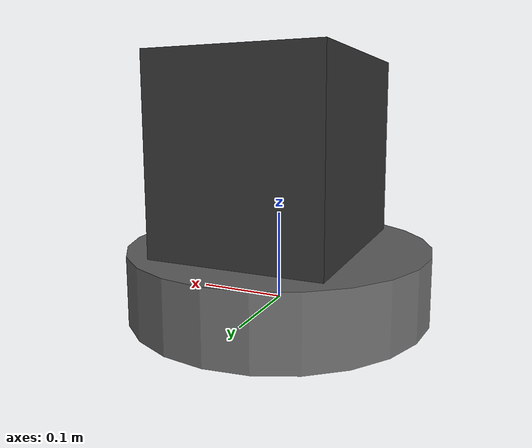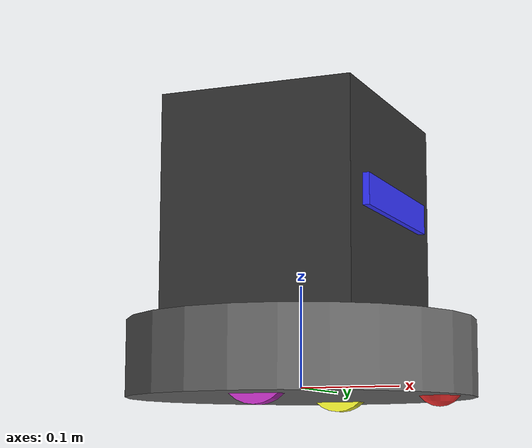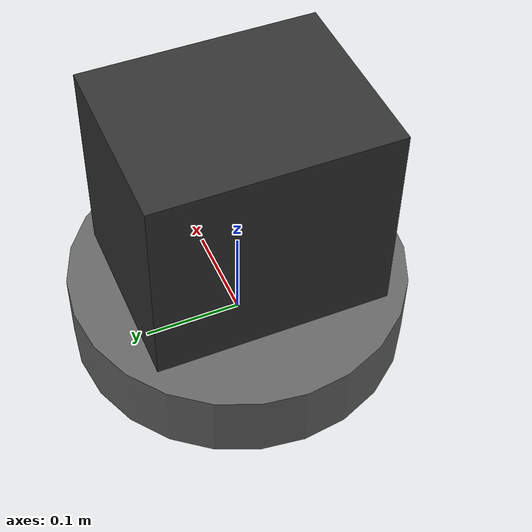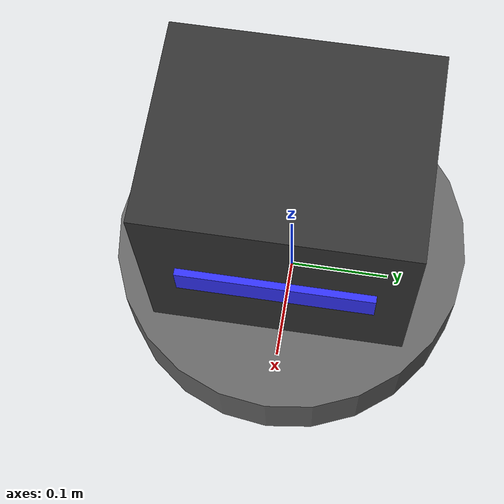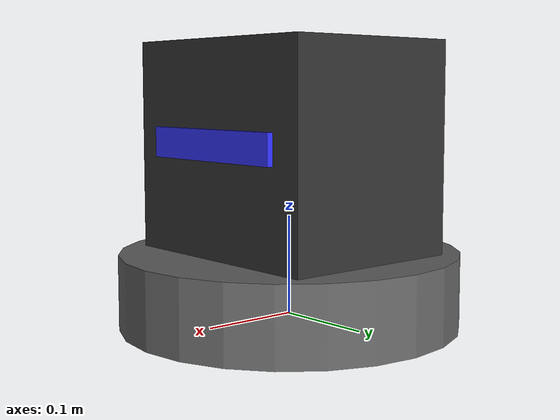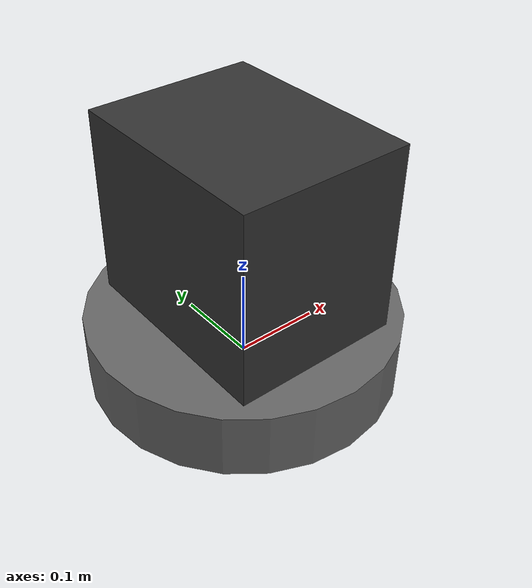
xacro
<?xml version="1.0"?>
<robot xmlns:xacro="http://www.ros.org/wiki/xacro"  name="robot">

    <xacro:arg name="use_ros2_control" default="true"/>
    <xacro:arg name="sim_mode" default="false"/>

    <xacro:include filename="robot_core.xacro" />

    <xacro:if value="$(arg use_ros2_control)">
        <xacro:include filename="ros2_control.xacro" />
    </xacro:if>
    <xacro:unless value="$(arg use_ros2_control)">
        <xacro:include filename="gazebo_control.xacro" />
    </xacro:unless>
    <xacro:include filename="lidar.xacro" />
    <xacro:include filename="depth_camera.xacro" />

</robot>

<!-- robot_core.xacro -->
<robot xmlns:xacro="http://www.ros.org/wiki/xacro">

<!-- Made by Ranil Ganlath: ranil.ganlath@gmail.com -->
<!-- This is the main urdf script for the Dark Passenger Payload mounted on a roomba chassis -->

  <!-- This makes inertia estimates easier -->
    <xacro:include filename="inertial_macros.xacro"/>

  <!-- Material Colors -->
    <material name="orange">
        <color rgba="${255/255} ${108/255} ${10/255} 1.0"/>
    </material>

    <material name="brown">
        <color rgba="${222/255} ${207/255} ${195/255} 1.0"/>
    </material>

    <material name="yellow">
        <color rgba="1 1 0.2 1" />
    </material>

    <material name="black">
        <color rgba="0.2 0.2 0.2 1" />
    </material>

    <material name="gray">
        <color rgba="0.4 0.4 0.4 1" />
    </material>

    <material name="white">
        <color rgba="0.7 0.7 0.7 1" />
    </material>

    <material name="blue">
        <color rgba="0.2 0.2 1 1" />
    </material>

    <material name="red">
        <color rgba="1 0.2 0.2 1" />
    </material>

    <material name="green">
        <color rgba="0.2 1 0.2 1" />
    </material>

    <material name="teal">
        <color rgba="0.2 0.8 1 1" />
    </material>

    <material name="magenta">
        <color rgba="0.8 0.2 0.8 1" />
    </material>

  <!-- XACRO Constants -->
    <xacro:property name="roomba_wheel_radius" value="0.035" />
    <xacro:property name="roomba_wheel_separation" value="0.218" />
    <xacro:property name="roomba_wheel_height_offset" value="0.01" />
    <xacro:property name="roomba_wheel_thickness" value="0.015" />
    <xacro:property name="roomba_wheel_weight" value="0.1" />
    <xacro:property name="caster_wheel_radius" value="0.024" />
    <xacro:property name="caster_wheel_weight" value="0.026" />
    <xacro:property name="caster_wheel_center_offset" value="0.14" />
    <xacro:property name="roomba_chassis_radius" value="0.17145" />
    <xacro:property name="roomba_chassis_height" value="0.075" />
    <xacro:property name="roomba_chassis_weight" value="1.81437" />

    <xacro:property name="payload_chassis_length" value="0.19" />
    <xacro:property name="payload_chassis_width" value="0.24" />
    <xacro:property name="payload_chassis_height" value="0.21" />
    <xacro:property name="payload_chassis_weight" value="3.4473" />

  <!-- Base Link (WORLD)-->
  <link name="base_link"></link>

 <!-- Roomba Chassis Link -->
    <joint name="roomba_chassis_joint" type="fixed">
        <parent link="base_link"/>
        <child link="roomba_chassis"/>
        <origin xyz="0 0 -${roomba_wheel_height_offset}" rpy="0 0 0"/>
    </joint>
    <link name="roomba_chassis">
        <visual>
            <origin xyz ="0 0 ${roomba_chassis_height/2}"/>
            <geometry>
                <cylinder radius="${roomba_chassis_radius}" length="${roomba_chassis_height}"/>
            </geometry>
            <material name="gray"/>
        </visual>
        <collision>
            <origin xyz ="0 0 ${roomba_chassis_height/2}"/>
            <geometry>
                <cylinder radius="${roomba_chassis_radius}" length="${roomba_chassis_height}"/>
            </geometry>
        </collision>
        <xacro:inertial_cylinder mass="${roomba_chassis_weight}" radius="${roomba_chassis_radius}" length="${roomba_chassis_height}">
            <origin xyz="0 0 ${roomba_chassis_height/2}" rpy= "0 0 0"/>
        </xacro:inertial_cylinder>
    </link>

    <gazebo reference="roomba_chassis">
        <material>Gazebo/White</material>
    </gazebo>

<!-- LEFT WHEEL Link -->
    <joint name="left_wheel_joint" type="continuous">
        <parent link="roomba_chassis"/>
        <child link="left_wheel"/>
        <origin xyz="0 ${roomba_wheel_separation/2} ${roomba_wheel_radius - roomba_wheel_height_offset}" rpy="-${pi/2} 0 0"/>
        <axis xyz="0 0 1"/>
    </joint>
    <link name="left_wheel">
        <visual>
            <geometry>
                <cylinder radius="${roomba_wheel_radius}" length="${roomba_wheel_thickness}"/>
            </geometry>
            <material name="yellow"/>
        </visual>
        <collision>
            <geometry>
                <sphere radius="${roomba_wheel_radius}"/>
            </geometry>
        </collision>
        <xacro:inertial_cylinder mass="${roomba_wheel_weight}" radius="${roomba_wheel_radius}" length="${roomba_wheel_thickness}">
            <origin xyz="0 0 0" rpy= "0 0 0"/>
        </xacro:inertial_cylinder>
    </link>
    <gazebo reference="left_wheel">
        <material>Gazebo/Blue</material>
    </gazebo>

<!-- RIGHT WHEEL Link -->
    <joint name="right_wheel_joint" type="continuous">
        <parent link="roomba_chassis"/>
        <child link="right_wheel"/>
        <origin xyz="0 -${roomba_wheel_separation/2} ${roomba_wheel_radius - roomba_wheel_height_offset}" rpy="${pi/2} 0 0"/>
        <axis xyz="0 0 -1"/>
    </joint>
    <link name="right_wheel">
        <visual>
            <geometry>
                <cylinder radius="${roomba_wheel_radius}" length="${roomba_wheel_thickness}"/>
            </geometry>
            <material name="magenta"/>
        </visual>
        <collision>
            <geometry>
                <sphere radius="${roomba_wheel_radius}"/>
            </geometry>
        </collision>
        <xacro:inertial_cylinder mass="${roomba_wheel_weight}" radius="${roomba_wheel_radius}" length="${roomba_wheel_thickness}">
            <origin xyz="0 0 0" rpy= "0 0 0"/>
        </xacro:inertial_cylinder>
    </link>
    <gazebo reference="right_wheel">
        <material>Gazebo/Red</material>
    </gazebo>

<!-- CASTER WHEEL Link -->
    <joint name="caster_wheel_joint" type="fixed">
        <parent link="roomba_chassis"/>
        <child link="caster_wheel"/>
        <origin xyz="${caster_wheel_center_offset} 0 ${caster_wheel_radius - roomba_wheel_height_offset}"/>
    </joint>
    <link name="caster_wheel">
        <visual>
            <geometry>
                <sphere radius="${caster_wheel_radius}"/>
            </geometry>
            <material name="red"/>
        </visual>
        <collision>
            <geometry>
                <sphere radius="${caster_wheel_radius}"/>
            </geometry>
        </collision>
        <xacro:inertial_sphere mass="${caster_wheel_weight}" radius="${caster_wheel_radius}">
            <origin xyz="0 0 0" rpy= "0 0 0"/>
        </xacro:inertial_sphere>
    </link>
    <gazebo reference="caster_wheel">
        <material>Gazebo/Blue</material>
        <mu1 value="0.001"/>
        <mu2 value="0.001"/>
    </gazebo>

 <!-- Payload Chassis Link -->
    <joint name="payload_chassis_joint" type="fixed">
        <parent link="roomba_chassis"/>
        <child link="payload_chassis"/>
        <origin xyz="-${payload_chassis_length/2} 0 ${roomba_chassis_height}" rpy="0 0 0"/>
    </joint>
    <link name="payload_chassis">
        <visual>
            <origin xyz ="${payload_chassis_length/2} 0 ${payload_chassis_height/2}"/>
            <geometry>
                <box size="${payload_chassis_length} ${payload_chassis_width} ${payload_chassis_height}"/>
            </geometry>
            <material name="black"/>
        </visual>
        <collision>
            <origin xyz ="${payload_chassis_length/2} 0 ${payload_chassis_height/2}"/>
            <geometry>
                <box size="${payload_chassis_length} ${payload_chassis_width} ${payload_chassis_height}"/>
            </geometry>
        </collision>
        <xacro:inertial_box mass ="${payload_chassis_weight}" x="${payload_chassis_length}" y="${payload_chassis_width}" z="${payload_chassis_height}">
            <origin xyz ="${payload_chassis_length/2} 0 ${payload_chassis_height/2}" rpy = "0 0 0"/>
        </xacro:inertial_box>
    </link>
    <gazebo reference="payload_chassis">
        <material>Gazebo/Green</material>
    </gazebo>

</robot>

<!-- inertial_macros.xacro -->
<robot xmlns:xacro="http://www.ros.org/wiki/xacro" >

<!-- Specify some standard inertial calculations https://en.wikipedia.org/wiki/List_of_moments_of_inertia -->
<!-- These make use of xacro's mathematical functionality -->

    <xacro:macro name="inertial_sphere" params="mass radius *origin">
        <inertial>
            <xacro:insert_block name="origin"/>
            <mass value="${mass}" />
            <inertia ixx="${(2/5) * mass * (radius*radius)}" ixy="0.0" ixz="0.0"
                    iyy="${(2/5) * mass * (radius*radius)}" iyz="0.0"
                    izz="${(2/5) * mass * (radius*radius)}" />
        </inertial>
    </xacro:macro>

    <xacro:macro name="inertial_box" params="mass x y z *origin">
        <inertial>
            <xacro:insert_block name="origin"/>
            <mass value="${mass}" />
            <inertia ixx="${(1/12) * mass * (y*y+z*z)}" ixy="0.0" ixz="0.0"
                    iyy="${(1/12) * mass * (x*x+z*z)}" iyz="0.0"
                    izz="${(1/12) * mass * (x*x+y*y)}" />
        </inertial>
    </xacro:macro>

    <xacro:macro name="inertial_cylinder" params="mass length radius *origin">
        <inertial>
            <xacro:insert_block name="origin"/>
            <mass value="${mass}" />
            <inertia ixx="${(1/12) * mass * (3*radius*radius + length*length)}" ixy="0.0" ixz="0.0"
                    iyy="${(1/12) * mass * (3*radius*radius + length*length)}" iyz="0.0"
                    izz="${(1/2) * mass * (radius*radius)}" />
        </inertial>
    </xacro:macro>

</robot>

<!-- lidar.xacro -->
<robot xmlns:xacro="http://www.ros.org/wiki/xacro" >

    <joint name="laser_joint" type="fixed">
        <parent link="payload_chassis"/>
        <child link="laser_frame"/>
        <origin xyz="0.09 0 0.165" rpy="0 0 0"/>
    </joint>

    <link name="laser_frame">
        <visual>
            <geometry>
                <cylinder radius="0.035" length="0.02"/>
            </geometry>
            <material name="black"/>
        </visual>
        <visual>
            <origin xyz="0 0 -0.05"/>
            <geometry>
                <cylinder radius="0.035" length="0.1"/>
            </geometry>
            <material name="black"/>
        </visual>
    </link>

    <gazebo reference="laser_frame">
        <material>Gazebo/Black</material>

        <sensor name="laser" type="gpu_lidar">
            <pose> 0 0 0 0 0 0 </pose>
            <visualize>true</visualize>
            <update_rate>10</update_rate>
            <lidar>
                <scan>
                    <horizontal>
                        <samples>360</samples>
                        <min_angle>-3.14</min_angle>
                        <max_angle>3.14</max_angle>
                    </horizontal>
                </scan>
                <range>
                    <min>0.3</min>
                    <max>12</max>
                </range>
            </lidar>
            <topic>scan</topic>
            <gz_frame_id>laser_frame</gz_frame_id>
        </sensor>
    </gazebo>

</robot>

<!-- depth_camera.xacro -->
<robot xmlns:xacro="http://www.ros.org/wiki/xacro" >

    <joint name="depth_camera_joint" type="fixed">
        <parent link="payload_chassis"/>
        <child link="depth_camera_link"/>
        <origin xyz="0.18 0 0.110" rpy="0 0 0"/>
    </joint>

    <link name="depth_camera_link">
        <visual>
            <geometry>
                <box size="0.033 0.175 0.03"/>
            </geometry>
            <material name="blue"/>
        </visual>
    </link>

    <gazebo reference="depth_camera_link">
        <material>Gazebo/Blue</material>
        <sensor name="depth_camera" type="rgbd_camera">
            <pose> 0 0 0 0 0 0 </pose>
            <visualize>true</visualize>
            <update_rate>10</update_rate>
            <camera>
                <camera_info_topic>rgbd_camera/camera_info</camera_info_topic>
                <horizontal_fov>1.089</horizontal_fov>
                <image>
                    <format>R8G8B8</format>
                    <width>640</width>
                    <height>480</height>
                </image>
                <clip>
                    <near>0.05</near>
                    <far>8.0</far>
                </clip>
            </camera>
            <topic>rgbd_camera</topic>
            <gz_frame_id>depth_camera_link</gz_frame_id>
        </sensor>

    </gazebo>

</robot>
